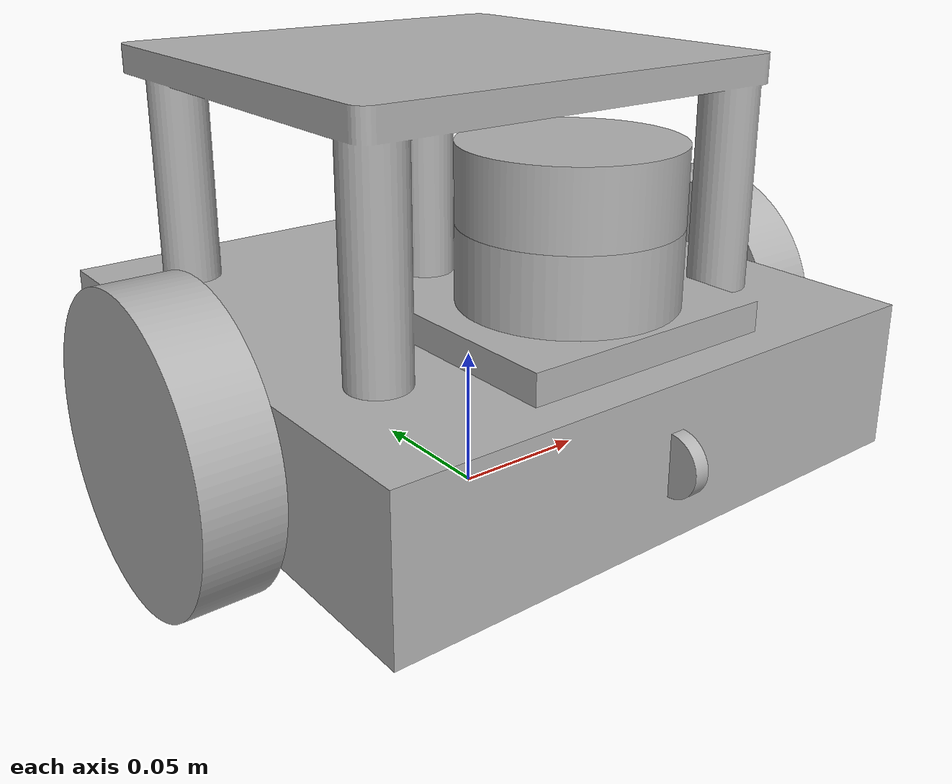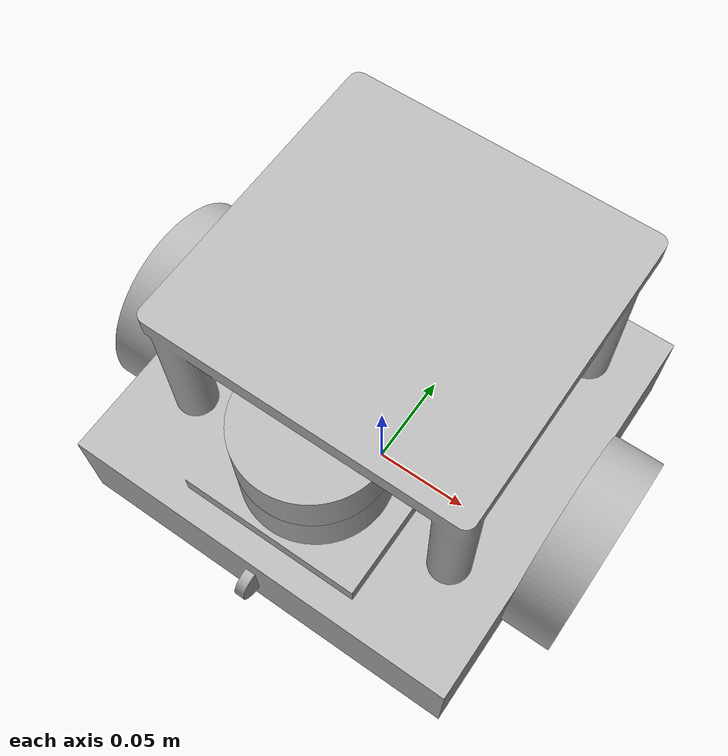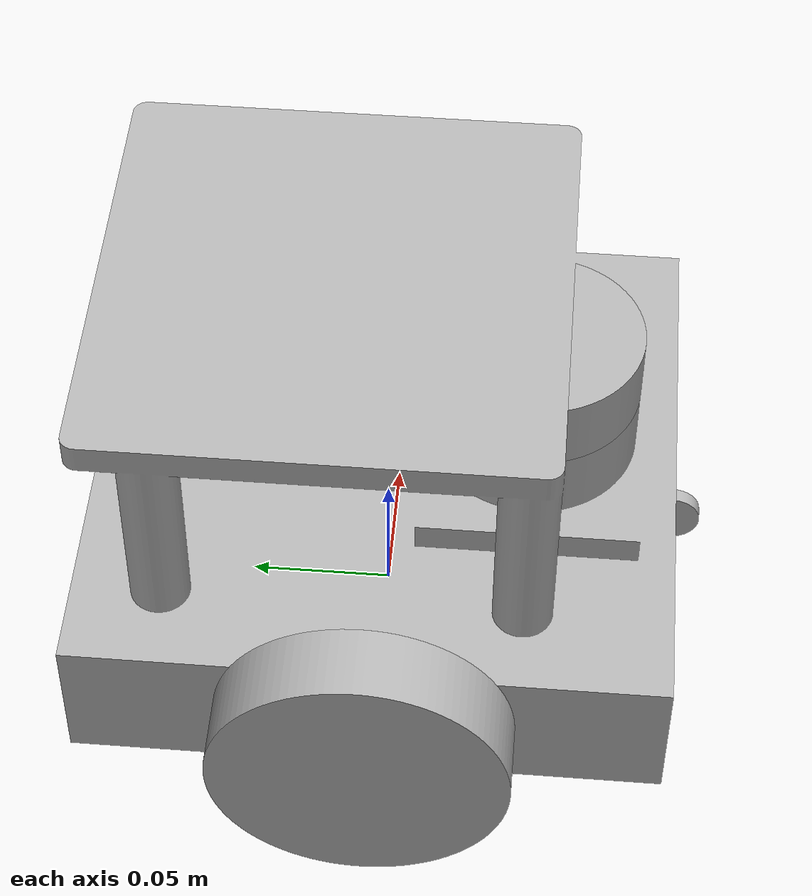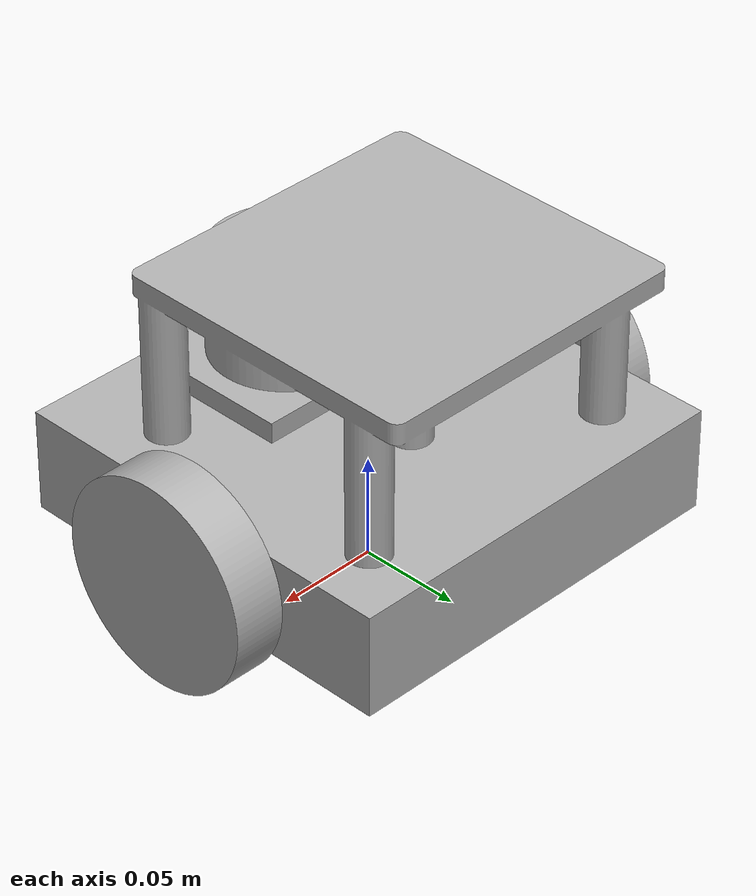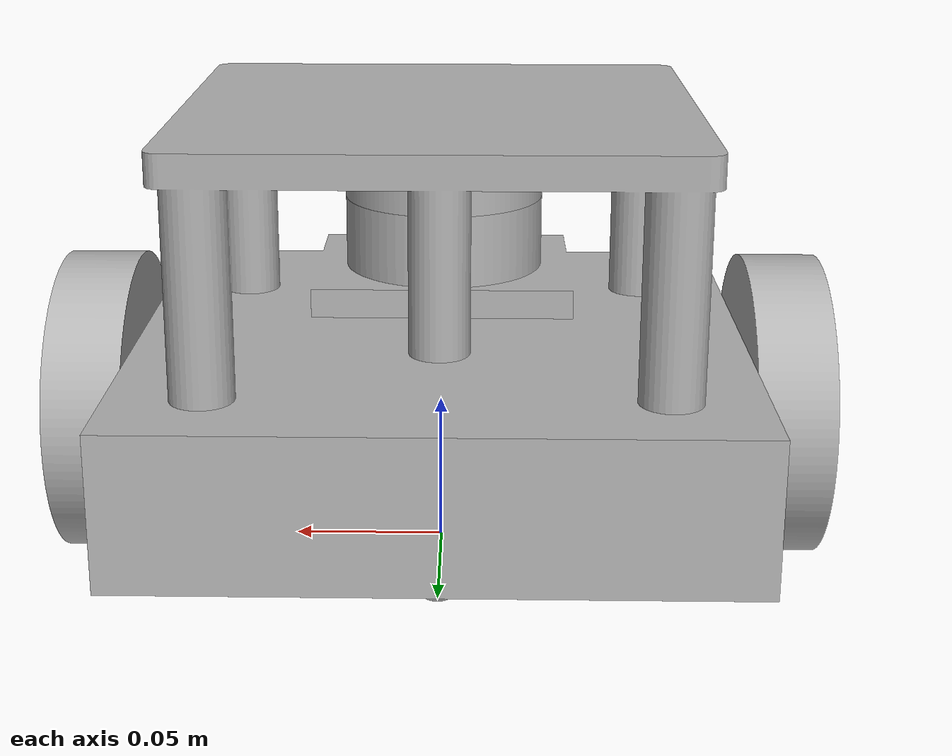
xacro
<?xml version="1.0" ?>
<robot name="s1110837-finaltopics" xmlns:xacro="http://www.ros.org/wiki/xacro">

<xacro:include filename="$(find s1110837-finaltopics_description)/urdf/materials.xacro" />
<xacro:include filename="$(find s1110837-finaltopics_description)/urdf/s1110837-finaltopics.trans" />
<xacro:include filename="$(find s1110837-finaltopics_description)/urdf/s1110837-finaltopics.gazebo" />
<link name="base_link">
  <inertial>
    <origin xyz="5.63872037916951e-14 -0.0009545686939231486 0.06478515956991303" rpy="0 0 0"/>
    <mass value="0.38533002960155827"/>
    <inertia ixx="0.001697" iyy="0.00164" izz="0.002399" ixy="-0.0" iyz="-3.4e-05" ixz="0.0"/>
  </inertial>
  <visual>
    <origin xyz="0 0 0" rpy="0 0 0"/>
    <geometry>
      <mesh filename="package://s1110837-finaltopics_description/meshes/base_link.stl" scale="0.001 0.001 0.001"/>
    </geometry>
    <material name="silver"/>
  </visual>
  <collision>
    <origin xyz="0 0 0" rpy="0 0 0"/>
    <geometry>
      <mesh filename="package://s1110837-finaltopics_description/meshes/base_link.stl" scale="0.001 0.001 0.001"/>
    </geometry>
  </collision>
</link>

<link name="left_wheel_1">
  <inertial>
    <origin xyz="-0.012499999999999997 -1.1580046200244058e-17 0.0" rpy="0 0 0"/>
    <mass value="0.2788163480060941"/>
    <inertia ixx="0.000349" iyy="0.000189" izz="0.000189" ixy="-0.0" iyz="-0.0" ixz="0.0"/>
  </inertial>
  <visual>
    <origin xyz="0.1 -0.0 -0.05" rpy="0 0 0"/>
    <geometry>
      <mesh filename="package://s1110837-finaltopics_description/meshes/left_wheel_1.stl" scale="0.001 0.001 0.001"/>
    </geometry>
    <material name="silver"/>
  </visual>
  <collision>
    <origin xyz="0.1 -0.0 -0.05" rpy="0 0 0"/>
    <geometry>
      <mesh filename="package://s1110837-finaltopics_description/meshes/left_wheel_1.stl" scale="0.001 0.001 0.001"/>
    </geometry>
  </collision>
</link>

<link name="right_wheel_1">
  <inertial>
    <origin xyz="0.012499999999999997 -5.790023100122029e-18 0.0" rpy="0 0 0"/>
    <mass value="0.2788163480060941"/>
    <inertia ixx="0.000349" iyy="0.000189" izz="0.000189" ixy="0.0" iyz="0.0" ixz="-0.0"/>
  </inertial>
  <visual>
    <origin xyz="-0.1 -0.0 -0.05" rpy="0 0 0"/>
    <geometry>
      <mesh filename="package://s1110837-finaltopics_description/meshes/right_wheel_1.stl" scale="0.001 0.001 0.001"/>
    </geometry>
    <material name="silver"/>
  </visual>
  <collision>
    <origin xyz="-0.1 -0.0 -0.05" rpy="0 0 0"/>
    <geometry>
      <mesh filename="package://s1110837-finaltopics_description/meshes/right_wheel_1.stl" scale="0.001 0.001 0.001"/>
    </geometry>
  </collision>
</link>

<link name="lidar_1">
  <inertial>
    <origin xyz="0.0 0.0 0.012499999999999997" rpy="0 0 0"/>
    <mass value="0.21166480503561222"/>
    <inertia ixx="7.6e-05" iyy="7.6e-05" izz="0.00013" ixy="-0.0" iyz="0.0" ixz="-0.0"/>
  </inertial>
  <visual>
    <origin xyz="-0.0 0.05 -0.11" rpy="0 0 0"/>
    <geometry>
      <mesh filename="package://s1110837-finaltopics_description/meshes/lidar_1.stl" scale="0.001 0.001 0.001"/>
    </geometry>
    <material name="silver"/>
  </visual>
  <collision>
    <origin xyz="-0.0 0.05 -0.11" rpy="0 0 0"/>
    <geometry>
      <mesh filename="package://s1110837-finaltopics_description/meshes/lidar_1.stl" scale="0.001 0.001 0.001"/>
    </geometry>
  </collision>
</link>

<link name="camera_1">
  <inertial>
    <origin xyz="0.0 -0.002500000000000016 0.0" rpy="0 0 0"/>
    <mass value="0.0034243359924128747"/>
    <inertia ixx="0.0" iyy="0.0" izz="0.0" ixy="-0.0" iyz="0.0" ixz="0.0"/>
  </inertial>
  <visual>
    <origin xyz="-0.0 0.1 -0.05" rpy="0 0 0"/>
    <geometry>
      <mesh filename="package://s1110837-finaltopics_description/meshes/camera_1.stl" scale="0.001 0.001 0.001"/>
    </geometry>
    <material name="silver"/>
  </visual>
  <collision>
    <origin xyz="-0.0 0.1 -0.05" rpy="0 0 0"/>
    <geometry>
      <mesh filename="package://s1110837-finaltopics_description/meshes/camera_1.stl" scale="0.001 0.001 0.001"/>
    </geometry>
  </collision>
</link>

<joint name="Revolute 1" type="continuous">
  <origin xyz="-0.1 0.0 0.05" rpy="0 0 0"/>
  <parent link="base_link"/>
  <child link="left_wheel_1"/>
  <axis xyz="1.0 0.0 0.0"/>
</joint>

<joint name="Revolute 2" type="continuous">
  <origin xyz="0.1 0.0 0.05" rpy="0 0 0"/>
  <parent link="base_link"/>
  <child link="right_wheel_1"/>
  <axis xyz="1.0 0.0 0.0"/>
</joint>

<joint name="Rigid 3" type="fixed">
  <origin xyz="0.0 -0.05 0.11" rpy="0 0 0"/>
  <parent link="base_link"/>
  <child link="lidar_1"/>
</joint>

<joint name="Rigid 4" type="fixed">
  <origin xyz="0.0 -0.1 0.05" rpy="0 0 -1.5708"/>
  <parent link="base_link"/>
  <child link="camera_1"/>
</joint>

</robot>

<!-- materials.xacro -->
<robot name="s1110837-finaltopics" xmlns:xacro="http://www.ros.org/wiki/xacro" >

<material name="silver">
  <color rgba="0.700 0.700 0.700 1.000"/>
</material>

</robot>

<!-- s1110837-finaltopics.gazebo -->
<robot name="s1110837-finaltopics" xmlns:xacro="http://www.ros.org/wiki/xacro" >

<xacro:property name="body_color" value="Gazebo/Silver" />

<gazebo>
  <plugin name="control" filename="libgazebo_ros_control.so"/>
</gazebo>
<gazebo reference="base_link">
  <material>${body_color}</material>
  <mu1>0.1</mu1>
  <mu2>0.1</mu2>
  <selfCollide>true</selfCollide>
  <gravity>true</gravity>
</gazebo>

<gazebo reference="left_wheel_1">
  <material>${body_color}</material>
  <mu1>1500</mu1>
  <mu2>1500</mu2>
  <selfCollide>true</selfCollide>
</gazebo>

<gazebo reference="right_wheel_1">
  <material>${body_color}</material>
  <mu1>1500</mu1>
  <mu2>1500</mu2>
  <selfCollide>true</selfCollide>
</gazebo>

<gazebo reference="lidar_1">
  <material>${body_color}</material>
  <mu1>0.2</mu1>
  <mu2>0.2</mu2>
  <selfCollide>true</selfCollide>
</gazebo>

<gazebo reference="camera_1">
  <material>${body_color}</material>
  <mu1>0.2</mu1>
  <mu2>0.2</mu2>
  <selfCollide>true</selfCollide>
</gazebo>

<gazebo>

  <plugin name="differential_drive_controller" filename="libgazebo_ros_diff_drive.so">

    <!-- Plugin update rate in Hz -->
    <updateRate>100</updateRate>

    <!-- Name of left joint, defaults to `left_joint` -->
    <leftJoint>Revolute 2</leftJoint>

    <!-- Name of right joint, defaults to `right_joint` -->
    <rightJoint>Revolute 1</rightJoint>

    <!-- The distance from the center of one wheel to the other, in meters, defaults to 0.34 m -->
    <wheelSeparation>0.2</wheelSeparation>

    <!-- Diameter of the wheels, in meters, defaults to 0.15 m -->
    <wheelDiameter>0.1</wheelDiameter>

    <!-- Wheel acceleration, in rad/s^2, defaults to 0.0 rad/s^2 -->
    <wheelAcceleration>1.0</wheelAcceleration>

    <!-- Maximum torque which the wheels can produce, in Nm, defaults to 5 Nm -->
    <wheelTorque>50</wheelTorque>

    <!-- Topic to receive geometry_msgs/Twist message commands, defaults to `cmd_vel` -->
    <commandTopic>cmd_vel</commandTopic>

    <!-- Topic to publish nav_msgs/Odometry messages, defaults to `odom` -->
    <odometryTopic>odom</odometryTopic>

    <!-- Odometry frame, defaults to `odom` -->
    <odometryFrame>odom</odometryFrame>

    <!-- Robot frame to calculate odometry from, defaults to `base_footprint` -->
    <robotBaseFrame>base_link</robotBaseFrame>

    <!-- Odometry source, 0 for ENCODER, 1 for WORLD, defaults to WORLD -->
    <odometrySource>1</odometrySource>

    <!-- Set to true to publish transforms for the wheel links, defaults to false -->
    <publishWheelTF>true</publishWheelTF>

    <!-- Set to true to publish transforms for the odometry, defaults to true -->
    <publishOdom>true</publishOdom>

    <!-- Set to true to publish sensor_msgs/JointState on /joint_states for the wheel joints, defaults to false -->
    <publishWheelJointState>true</publishWheelJointState>

    <!-- Set to true to swap right and left wheels, defaults to true -->
    <legacyMode>false</legacyMode>

  </plugin>
</gazebo>

<!-- hokuyo -->
<gazebo reference="lidar_1">
  <sensor type="ray" name="head_hokuyo_sensor">
    <pose>0 0 0 0 0 -1.5708</pose>
    <visualize>true</visualize>
    <update_rate>40</update_rate>
    <ray>
      <scan>
        <horizontal>
          <samples>720</samples>
          <resolution>1</resolution>
          <min_angle>-3.1416</min_angle>
          <max_angle>0</max_angle>
        </horizontal>
      </scan>
      <range>
        <min>0.10</min>
        <max>30.0</max>
        <resolution>0.01</resolution>
      </range>
      <noise>
        <type>gaussian</type>
        <mean>0.0</mean>
        <stddev>0.01</stddev>
      </noise>
    </ray>
    <plugin name="gazebo_ros_head_hokuyo_controller" filename="libgazebo_ros_laser.so">
      <topicName>/scan</topicName>
      <frameName>lidar_1</frameName>
    </plugin>
  </sensor>
</gazebo>

<!-- camera -->
<gazebo reference="camera_1">
  <sensor type="camera" name="camera1">
    <pose>0 0 0 0 0 3.14159 0</pose>
    <update_rate>30.0</update_rate>
    <camera name="head">
      <horizontal_fov>1.3962634</horizontal_fov>
      <image>
        <width>800</width>
        <height>800</height>
        <format>R8G8B8</format>
      </image>
      <clip>
        <near>0.02</near>
        <far>300</far>
      </clip>
      <noise>
        <type>gaussian</type>
        <!-- Noise is sampled independently per pixel on each frame.
              That pixel's noise value is added to each of its color
              channels, which at that point lie in the range [0,1]. -->
        <mean>0.0</mean>
        <stddev>0.007</stddev>
      </noise>
    </camera>
    <plugin name="camera_controller" filename="libgazebo_ros_camera.so">
      <alwaysOn>true</alwaysOn>
      <updateRate>0.0</updateRate>
      <cameraName>camera1</cameraName>
      <imageTopicName>image_raw</imageTopicName>
      <cameraInfoTopicName>camera_info</cameraInfoTopicName>
      <frameName>camera_1</frameName>
      <hackBaseline>0.07</hackBaseline>
      <distortionK1>0.0</distortionK1>
      <distortionK2>0.0</distortionK2>
      <distortionK3>0.0</distortionK3>
      <distortionT1>0.0</distortionT1>
      <distortionT2>0.0</distortionT2>
    </plugin>
  </sensor>
</gazebo>

</robot>
